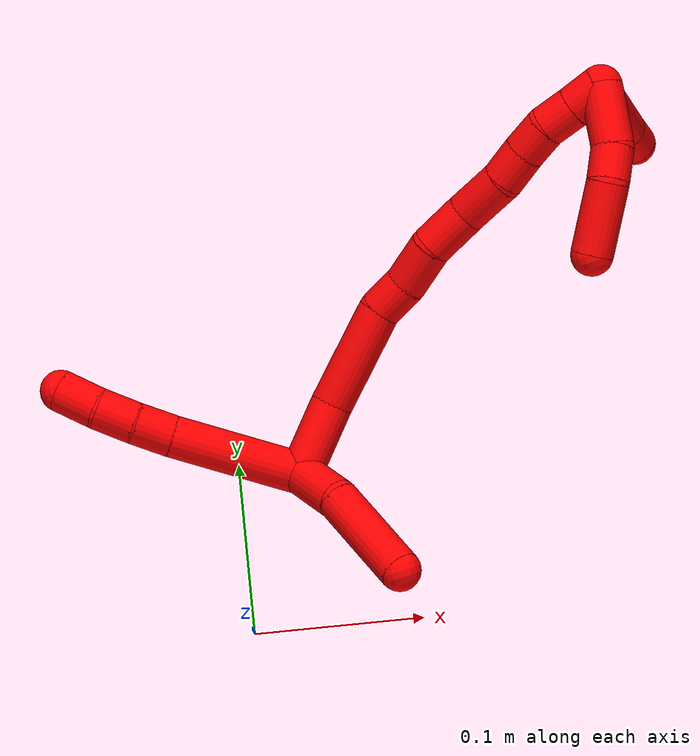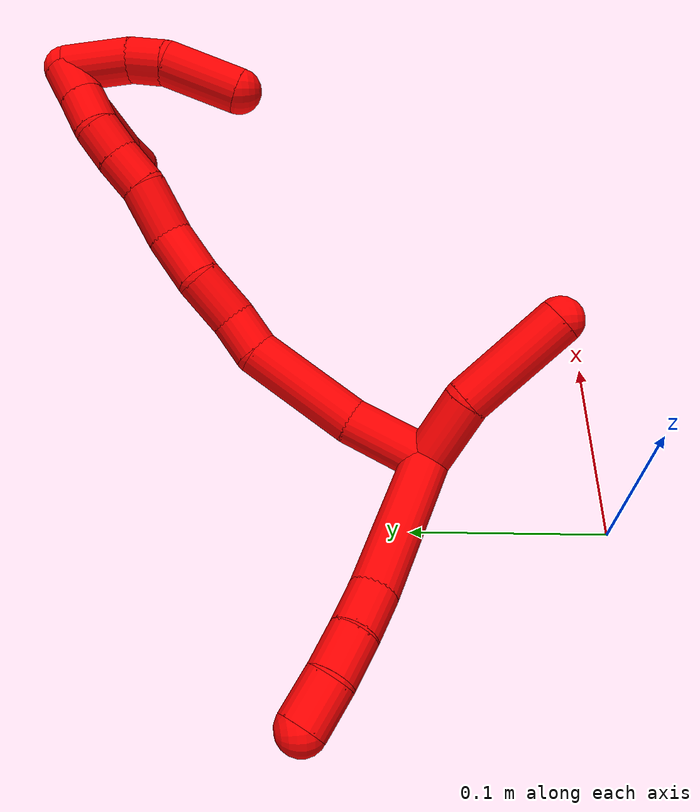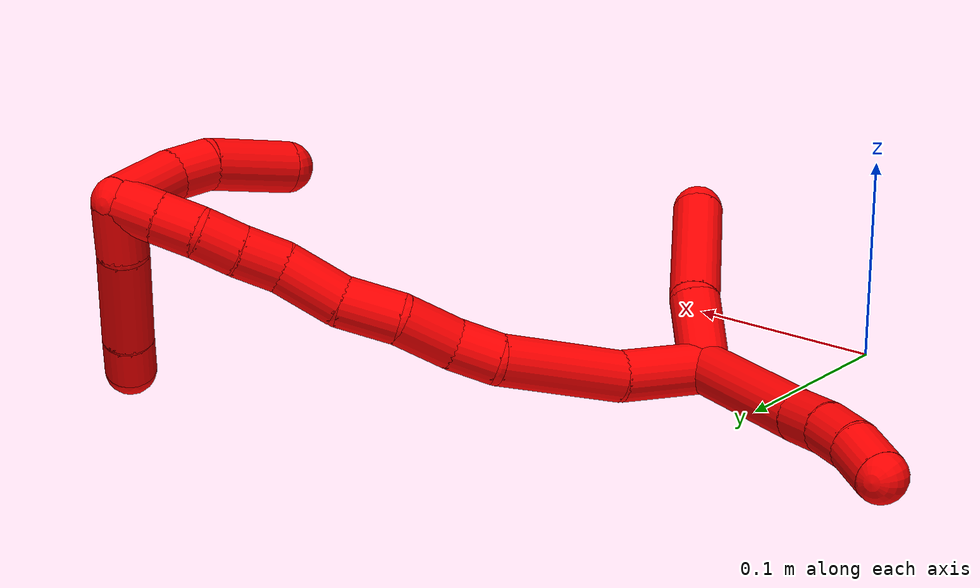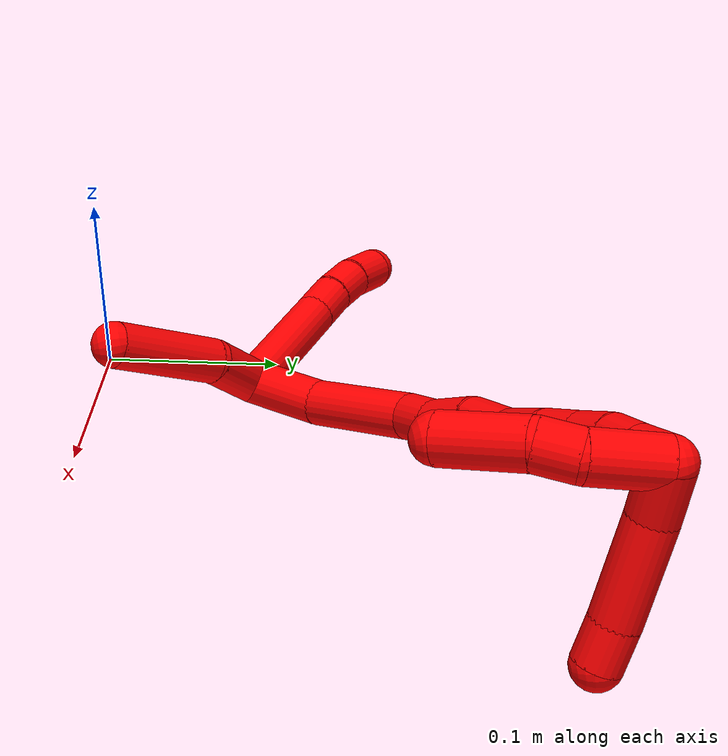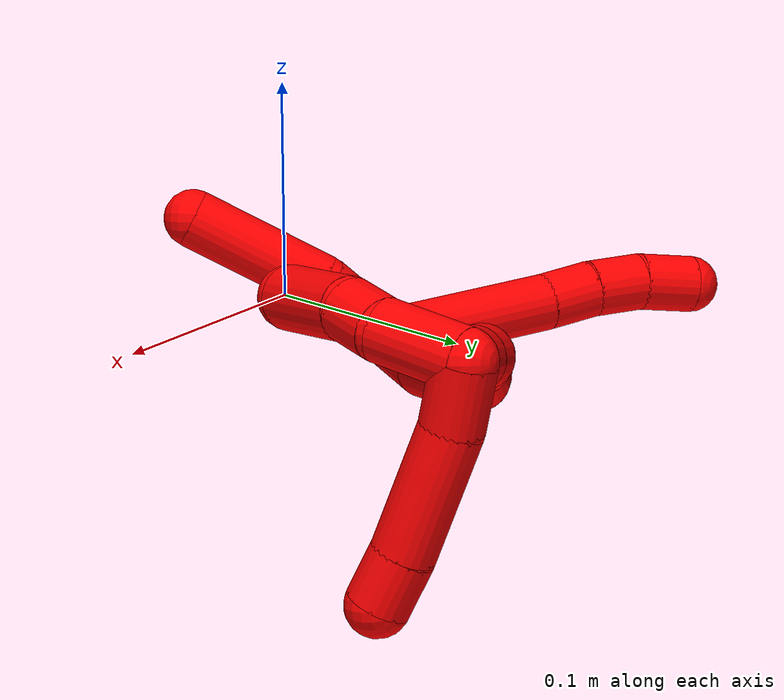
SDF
<sdf version="1.7">
 <world name="default">
  <model name="bin">
   <static>1</static>
   <link name="bottom">
    <collision name="collision-bottom">
     <pose>0 0 -0.01 0 -0 0</pose>
     <geometry><box><size>0.8 0.6 0.02</size></box></geometry>
     <surface>
      <friction><ode><mu>100</mu><mu2>100</mu2></ode></friction>
      <contact><collide_bitmask>65535</collide_bitmask></contact>
     </surface>
    </collision>
   </link>
   <link name="west_wall">
    <collision name="collision-west_wall">
     <pose>-0.41 0 0.1 0 -0 0</pose>
     <geometry><box><size>0.02 0.6 0.2</size></box></geometry>
     <surface>
      <friction><ode><mu>100</mu><mu2>100</mu2></ode></friction>
      <contact><collide_bitmask>65535</collide_bitmask></contact>
     </surface>
    </collision>
   </link>
   <link name="east_wall">
    <collision name="collision-east_wall">
     <pose>0.41 0 0.1 0 -0 0</pose>
     <geometry><box><size>0.02 0.6 0.2</size></box></geometry>
     <surface>
      <friction><ode><mu>100</mu><mu2>100</mu2></ode></friction>
      <contact><collide_bitmask>65535</collide_bitmask></contact>
     </surface>
    </collision>
   </link>
   <link name="south_wall">
    <collision name="collision-south_wall">
     <pose>0 -0.31 0.1 0 -0 0</pose>
     <geometry><box><size>0.8 0.02 0.2</size></box></geometry>
     <surface>
      <friction><ode><mu>100</mu><mu2>100</mu2></ode></friction>
      <contact><collide_bitmask>65535</collide_bitmask></contact>
     </surface>
    </collision>
   </link>
   <link name="north_wall">
    <collision name="collision-north_wall">
     <pose>0 0.31 0.1 0 -0 0</pose>
     <geometry><box><size>0.8 0.02 0.2</size></box></geometry>
     <surface>
      <friction><ode><mu>100</mu><mu2>100</mu2></ode></friction>
      <contact><collide_bitmask>65535</collide_bitmask></contact>
     </surface>
    </collision>
   </link>
  </model>
  <model name="2">
   <static>0</static>
   <link name="2">
    <collision name="collision-cylinder-e_1_2_8">
     <pose>-0.029809 -0.013512 0.021654 0.557871 -0.862682 -0.262119</pose>
     <geometry><cylinder><radius>0.0125</radius><length>0.078488</length></cylinder></geometry>
     <surface>
      <friction><ode><mu>1.16</mu><mu2>1.16</mu2><slip1>0</slip1><slip2>0</slip2></ode></friction>
      <contact><ode><kp>1e+06</kp><kd>1</kd><max_vel>0</max_vel><min_depth>0.001</min_depth></ode></contact>
     </surface>
    </collision>
    <visual name="visual-cylinder-e_1_2_8">
     <pose>-0.029809 -0.013512 0.021654 0.557871 -0.862682 -0.262119</pose>
     <geometry><cylinder><radius>0.0125</radius><length>0.078488</length></cylinder></geometry>
     <material><ambient>1 0 0 1</ambient></material>
    </visual>
    <collision name="collision-cylinder-e_2_8_9">
     <pose>-0.067682 -0.031587 0.050214 0.583911 -0.772379 -0.243201</pose>
     <geometry><cylinder><radius>0.0125</radius><length>0.023109</length></cylinder></geometry>
     <surface>
      <friction><ode><mu>1.16</mu><mu2>1.16</mu2><slip1>0</slip1><slip2>0</slip2></ode></friction>
      <contact><ode><kp>1e+06</kp><kd>1</kd><max_vel>0</max_vel><min_depth>0.001</min_depth></ode></contact>
     </surface>
    </collision>
    <visual name="visual-cylinder-e_2_8_9">
     <pose>-0.067682 -0.031587 0.050214 0.583911 -0.772379 -0.243201</pose>
     <geometry><cylinder><radius>0.0125</radius><length>0.023109</length></cylinder></geometry>
     <material><ambient>1 0 0 1</ambient></material>
    </visual>
    <collision name="collision-cylinder-e_3_9_10">
     <pose>-0.084282 -0.039532 0.06451 0.429164 -0.80988 -0.186288</pose>
     <geometry><cylinder><radius>0.0125</radius><length>0.023575</length></cylinder></geometry>
     <surface>
      <friction><ode><mu>1.16</mu><mu2>1.16</mu2><slip1>0</slip1><slip2>0</slip2></ode></friction>
      <contact><ode><kp>1e+06</kp><kd>1</kd><max_vel>0</max_vel><min_depth>0.001</min_depth></ode></contact>
     </surface>
    </collision>
    <visual name="visual-cylinder-e_3_9_10">
     <pose>-0.084282 -0.039532 0.06451 0.429164 -0.80988 -0.186288</pose>
     <geometry><cylinder><radius>0.0125</radius><length>0.023575</length></cylinder></geometry>
     <material><ambient>1 0 0 1</ambient></material>
    </visual>
    <collision name="collision-cylinder-e_4_10_6">
     <pose>-0.102079 -0.044254 0.080059 0.162822 -0.842051 -0.073041</pose>
     <geometry><cylinder><radius>0.0125</radius><length>0.024827</length></cylinder></geometry>
     <surface>
      <friction><ode><mu>1.16</mu><mu2>1.16</mu2><slip1>0</slip1><slip2>0</slip2></ode></friction>
      <contact><ode><kp>1e+06</kp><kd>1</kd><max_vel>0</max_vel><min_depth>0.001</min_depth></ode></contact>
     </surface>
    </collision>
    <visual name="visual-cylinder-e_4_10_6">
     <pose>-0.102079 -0.044254 0.080059 0.162822 -0.842051 -0.073041</pose>
     <geometry><cylinder><radius>0.0125</radius><length>0.024827</length></cylinder></geometry>
     <material><ambient>1 0 0 1</ambient></material>
    </visual>
    <collision name="collision-cylinder-e_1_2_11">
     <pose>0.013227 -0.009094 -0.010035 2.40531 0.773591 1.62522</pose>
     <geometry><cylinder><radius>0.0125</radius><length>0.03786</length></cylinder></geometry>
     <surface>
      <friction><ode><mu>1.16</mu><mu2>1.16</mu2><slip1>0</slip1><slip2>0</slip2></ode></friction>
      <contact><ode><kp>1e+06</kp><kd>1</kd><max_vel>0</max_vel><min_depth>0.001</min_depth></ode></contact>
     </surface>
    </collision>
    <visual name="visual-cylinder-e_1_2_11">
     <pose>0.013227 -0.009094 -0.010035 2.40531 0.773591 1.62522</pose>
     <geometry><cylinder><radius>0.0125</radius><length>0.03786</length></cylinder></geometry>
     <material><ambient>1 0 0 1</ambient></material>
    </visual>
    <collision name="collision-cylinder-e_2_11_5">
     <pose>0.043311 -0.028439 -0.044072 2.738 0.573492 1.9285</pose>
     <geometry><cylinder><radius>0.0125</radius><length>0.06214</length></cylinder></geometry>
     <surface>
      <friction><ode><mu>1.16</mu><mu2>1.16</mu2><slip1>0</slip1><slip2>0</slip2></ode></friction>
      <contact><ode><kp>1e+06</kp><kd>1</kd><max_vel>0</max_vel><min_depth>0.001</min_depth></ode></contact>
     </surface>
    </collision>
    <visual name="visual-cylinder-e_2_11_5">
     <pose>0.043311 -0.028439 -0.044072 2.738 0.573492 1.9285</pose>
     <geometry><cylinder><radius>0.0125</radius><length>0.06214</length></cylinder></geometry>
     <material><ambient>1 0 0 1</ambient></material>
    </visual>
    <collision name="collision-cylinder-e_1_2_12">
     <pose>0.012815 0.007408 0.016757 -0.41628 0.610356 -0.132867</pose>
     <geometry><cylinder><radius>0.0125</radius><length>0.044716</length></cylinder></geometry>
     <surface>
      <friction><ode><mu>1.16</mu><mu2>1.16</mu2><slip1>0</slip1><slip2>0</slip2></ode></friction>
      <contact><ode><kp>1e+06</kp><kd>1</kd><max_vel>0</max_vel><min_depth>0.001</min_depth></ode></contact>
     </surface>
    </collision>
    <visual name="visual-cylinder-e_1_2_12">
     <pose>0.012815 0.007408 0.016757 -0.41628 0.610356 -0.132867</pose>
     <geometry><cylinder><radius>0.0125</radius><length>0.044716</length></cylinder></geometry>
     <material><ambient>1 0 0 1</ambient></material>
    </visual>
    <collision name="collision-cylinder-e_2_12_13">
     <pose>0.047214 0.019499 0.055716 -0.207819 0.760413 -0.083307</pose>
     <geometry><cylinder><radius>0.0125</radius><length>0.062634</length></cylinder></geometry>
     <surface>
      <friction><ode><mu>1.16</mu><mu2>1.16</mu2><slip1>0</slip1><slip2>0</slip2></ode></friction>
      <contact><ode><kp>1e+06</kp><kd>1</kd><max_vel>0</max_vel><min_depth>0.001</min_depth></ode></contact>
     </surface>
    </collision>
    <visual name="visual-cylinder-e_2_12_13">
     <pose>0.047214 0.019499 0.055716 -0.207819 0.760413 -0.083307</pose>
     <geometry><cylinder><radius>0.0125</radius><length>0.062634</length></cylinder></geometry>
     <material><ambient>1 0 0 1</ambient></material>
    </visual>
    <collision name="collision-cylinder-e_3_13_14">
     <pose>0.078716 0.025422 0.08295 -0.24206 1.08929 -0.147085</pose>
     <geometry><cylinder><radius>0.0125</radius><length>0.022379</length></cylinder></geometry>
     <surface>
      <friction><ode><mu>1.16</mu><mu2>1.16</mu2><slip1>0</slip1><slip2>0</slip2></ode></friction>
      <contact><ode><kp>1e+06</kp><kd>1</kd><max_vel>0</max_vel><min_depth>0.001</min_depth></ode></contact>
     </surface>
    </collision>
    <visual name="visual-cylinder-e_3_13_14">
     <pose>0.078716 0.025422 0.08295 -0.24206 1.08929 -0.147085</pose>
     <geometry><cylinder><radius>0.0125</radius><length>0.022379</length></cylinder></geometry>
     <material><ambient>1 0 0 1</ambient></material>
    </visual>
    <collision name="collision-cylinder-e_4_14_15">
     <pose>0.100313 0.025642 0.096185 0.124006 0.954802 0.06421</pose>
     <geometry><cylinder><radius>0.0125</radius><length>0.028621</length></cylinder></geometry>
     <surface>
      <friction><ode><mu>1.16</mu><mu2>1.16</mu2><slip1>0</slip1><slip2>0</slip2></ode></friction>
      <contact><ode><kp>1e+06</kp><kd>1</kd><max_vel>0</max_vel><min_depth>0.001</min_depth></ode></contact>
     </surface>
    </collision>
    <visual name="visual-cylinder-e_4_14_15">
     <pose>0.100313 0.025642 0.096185 0.124006 0.954802 0.06421</pose>
     <geometry><cylinder><radius>0.0125</radius><length>0.028621</length></cylinder></geometry>
     <material><ambient>1 0 0 1</ambient></material>
    </visual>
    <collision name="collision-cylinder-e_5_15_16">
     <pose>0.124702 0.027025 0.110639 -0.367546 1.0859 -0.223391</pose>
     <geometry><cylinder><radius>0.0125</radius><length>0.02873</length></cylinder></geometry>
     <surface>
      <friction><ode><mu>1.16</mu><mu2>1.16</mu2><slip1>0</slip1><slip2>0</slip2></ode></friction>
      <contact><ode><kp>1e+06</kp><kd>1</kd><max_vel>0</max_vel><min_depth>0.001</min_depth></ode></contact>
     </surface>
    </collision>
    <visual name="visual-cylinder-e_5_15_16">
     <pose>0.124702 0.027025 0.110639 -0.367546 1.0859 -0.223391</pose>
     <geometry><cylinder><radius>0.0125</radius><length>0.02873</length></cylinder></geometry>
     <material><ambient>1 0 0 1</ambient></material>
    </visual>
    <collision name="collision-cylinder-e_6_16_17">
     <pose>0.151757 0.028362 0.122757 0.180179 1.17664 0.120382</pose>
     <geometry><cylinder><radius>0.0125</radius><length>0.031073</length></cylinder></geometry>
     <surface>
      <friction><ode><mu>1.16</mu><mu2>1.16</mu2><slip1>0</slip1><slip2>0</slip2></ode></friction>
      <contact><ode><kp>1e+06</kp><kd>1</kd><max_vel>0</max_vel><min_depth>0.001</min_depth></ode></contact>
     </surface>
    </collision>
    <visual name="visual-cylinder-e_6_16_17">
     <pose>0.151757 0.028362 0.122757 0.180179 1.17664 0.120382</pose>
     <geometry><cylinder><radius>0.0125</radius><length>0.031073</length></cylinder></geometry>
     <material><ambient>1 0 0 1</ambient></material>
    </visual>
    <collision name="collision-cylinder-e_7_17_18">
     <pose>0.175128 0.027621 0.134573 -0.055212 0.987593 -0.029725</pose>
     <geometry><cylinder><radius>0.0125</radius><length>0.021628</length></cylinder></geometry>
     <surface>
      <friction><ode><mu>1.16</mu><mu2>1.16</mu2><slip1>0</slip1><slip2>0</slip2></ode></friction>
      <contact><ode><kp>1e+06</kp><kd>1</kd><max_vel>0</max_vel><min_depth>0.001</min_depth></ode></contact>
     </surface>
    </collision>
    <visual name="visual-cylinder-e_7_17_18">
     <pose>0.175128 0.027621 0.134573 -0.055212 0.987593 -0.029725</pose>
     <geometry><cylinder><radius>0.0125</radius><length>0.021628</length></cylinder></geometry>
     <material><ambient>1 0 0 1</ambient></material>
    </visual>
    <collision name="collision-cylinder-e_8_18_19">
     <pose>0.192889 0.02784 0.145455 0.022182 1.05634 0.012943</pose>
     <geometry><cylinder><radius>0.0125</radius><length>0.020067</length></cylinder></geometry>
     <surface>
      <friction><ode><mu>1.16</mu><mu2>1.16</mu2><slip1>0</slip1><slip2>0</slip2></ode></friction>
      <contact><ode><kp>1e+06</kp><kd>1</kd><max_vel>0</max_vel><min_depth>0.001</min_depth></ode></contact>
     </surface>
    </collision>
    <visual name="visual-cylinder-e_8_18_19">
     <pose>0.192889 0.02784 0.145455 0.022182 1.05634 0.012943</pose>
     <geometry><cylinder><radius>0.0125</radius><length>0.020067</length></cylinder></geometry>
     <material><ambient>1 0 0 1</ambient></material>
    </visual>
    <collision name="collision-cylinder-e_9_19_20">
     <pose>0.211048 0.029283 0.153459 -0.468505 1.22096 -0.330859</pose>
     <geometry><cylinder><radius>0.0125</radius><length>0.020063</length></cylinder></geometry>
     <surface>
      <friction><ode><mu>1.16</mu><mu2>1.16</mu2><slip1>0</slip1><slip2>0</slip2></ode></friction>
      <contact><ode><kp>1e+06</kp><kd>1</kd><max_vel>0</max_vel><min_depth>0.001</min_depth></ode></contact>
     </surface>
    </collision>
    <visual name="visual-cylinder-e_9_19_20">
     <pose>0.211048 0.029283 0.153459 -0.468505 1.22096 -0.330859</pose>
     <geometry><cylinder><radius>0.0125</radius><length>0.020063</length></cylinder></geometry>
     <material><ambient>1 0 0 1</ambient></material>
    </visual>
    <collision name="collision-cylinder-e_10_20_1">
     <pose>0.229836 0.032206 0.159892 -0.386685 1.20066 -0.266494</pose>
     <geometry><cylinder><radius>0.0125</radius><length>0.020088</length></cylinder></geometry>
     <surface>
      <friction><ode><mu>1.16</mu><mu2>1.16</mu2><slip1>0</slip1><slip2>0</slip2></ode></friction>
      <contact><ode><kp>1e+06</kp><kd>1</kd><max_vel>0</max_vel><min_depth>0.001</min_depth></ode></contact>
     </surface>
    </collision>
    <visual name="visual-cylinder-e_10_20_1">
     <pose>0.229836 0.032206 0.159892 -0.386685 1.20066 -0.266494</pose>
     <geometry><cylinder><radius>0.0125</radius><length>0.020088</length></cylinder></geometry>
     <material><ambient>1 0 0 1</ambient></material>
    </visual>
    <collision name="collision-cylinder-e_1_1_21">
     <pose>0.238838 0.029037 0.145521 2.891 -0.019779 -0.156711</pose>
     <geometry><cylinder><radius>0.0125</radius><length>0.036622</length></cylinder></geometry>
     <surface>
      <friction><ode><mu>1.16</mu><mu2>1.16</mu2><slip1>0</slip1><slip2>0</slip2></ode></friction>
      <contact><ode><kp>1e+06</kp><kd>1</kd><max_vel>0</max_vel><min_depth>0.001</min_depth></ode></contact>
     </surface>
    </collision>
    <visual name="visual-cylinder-e_1_1_21">
     <pose>0.238838 0.029037 0.145521 2.891 -0.019779 -0.156711</pose>
     <geometry><cylinder><radius>0.0125</radius><length>0.036622</length></cylinder></geometry>
     <material><ambient>1 0 0 1</ambient></material>
    </visual>
    <collision name="collision-cylinder-e_2_21_22">
     <pose>0.235368 0.020772 0.11866 2.75409 -0.305449 -1.3304</pose>
     <geometry><cylinder><radius>0.0125</radius><length>0.02067</length></cylinder></geometry>
     <surface>
      <friction><ode><mu>1.16</mu><mu2>1.16</mu2><slip1>0</slip1><slip2>0</slip2></ode></friction>
      <contact><ode><kp>1e+06</kp><kd>1</kd><max_vel>0</max_vel><min_depth>0.001</min_depth></ode></contact>
     </surface>
    </collision>
    <visual name="visual-cylinder-e_2_21_22">
     <pose>0.235368 0.020772 0.11866 2.75409 -0.305449 -1.3304</pose>
     <geometry><cylinder><radius>0.0125</radius><length>0.02067</length></cylinder></geometry>
     <material><ambient>1 0 0 1</ambient></material>
    </visual>
    <collision name="collision-cylinder-e_3_22_4">
     <pose>0.222004 0.01426 0.091013 2.99223 -0.500986 -2.57261</pose>
     <geometry><cylinder><radius>0.0125</radius><length>0.042708</length></cylinder></geometry>
     <surface>
      <friction><ode><mu>1.16</mu><mu2>1.16</mu2><slip1>0</slip1><slip2>0</slip2></ode></friction>
      <contact><ode><kp>1e+06</kp><kd>1</kd><max_vel>0</max_vel><min_depth>0.001</min_depth></ode></contact>
     </surface>
    </collision>
    <visual name="visual-cylinder-e_3_22_4">
     <pose>0.222004 0.01426 0.091013 2.99223 -0.500986 -2.57261</pose>
     <geometry><cylinder><radius>0.0125</radius><length>0.042708</length></cylinder></geometry>
     <material><ambient>1 0 0 1</ambient></material>
    </visual>
    <collision name="collision-cylinder-e_1_1_23">
     <pose>0.234297 0.045566 0.159624 -1.86502 -0.373033 0.498165</pose>
     <geometry><cylinder><radius>0.0125</radius><length>0.026907</length></cylinder></geometry>
     <surface>
      <friction><ode><mu>1.16</mu><mu2>1.16</mu2><slip1>0</slip1><slip2>0</slip2></ode></friction>
      <contact><ode><kp>1e+06</kp><kd>1</kd><max_vel>0</max_vel><min_depth>0.001</min_depth></ode></contact>
     </surface>
    </collision>
    <visual name="visual-cylinder-e_1_1_23">
     <pose>0.234297 0.045566 0.159624 -1.86502 -0.373033 0.498165</pose>
     <geometry><cylinder><radius>0.0125</radius><length>0.026907</length></cylinder></geometry>
     <material><ambient>1 0 0 1</ambient></material>
    </visual>
    <collision name="collision-cylinder-e_2_23_24">
     <pose>0.223795 0.080577 0.146173 -1.97391 -0.220103 0.331433</pose>
     <geometry><cylinder><radius>0.0125</radius><length>0.051289</length></cylinder></geometry>
     <surface>
      <friction><ode><mu>1.16</mu><mu2>1.16</mu2><slip1>0</slip1><slip2>0</slip2></ode></friction>
      <contact><ode><kp>1e+06</kp><kd>1</kd><max_vel>0</max_vel><min_depth>0.001</min_depth></ode></contact>
     </surface>
    </collision>
    <visual name="visual-cylinder-e_2_23_24">
     <pose>0.223795 0.080577 0.146173 -1.97391 -0.220103 0.331433</pose>
     <geometry><cylinder><radius>0.0125</radius><length>0.051289</length></cylinder></geometry>
     <material><ambient>1 0 0 1</ambient></material>
    </visual>
    <collision name="collision-cylinder-e_3_24_3">
     <pose>0.21637 0.113137 0.131407 -2.04929 -0.168295 0.275775</pose>
     <geometry><cylinder><radius>0.0125</radius><length>0.021803</length></cylinder></geometry>
     <surface>
      <friction><ode><mu>1.16</mu><mu2>1.16</mu2><slip1>0</slip1><slip2>0</slip2></ode></friction>
      <contact><ode><kp>1e+06</kp><kd>1</kd><max_vel>0</max_vel><min_depth>0.001</min_depth></ode></contact>
     </surface>
    </collision>
    <visual name="visual-cylinder-e_3_24_3">
     <pose>0.21637 0.113137 0.131407 -2.04929 -0.168295 0.275775</pose>
     <geometry><cylinder><radius>0.0125</radius><length>0.021803</length></cylinder></geometry>
     <material><ambient>1 0 0 1</ambient></material>
    </visual>
    <collision name="collision-sphere-3">
     <pose>0.214544 0.122678 0.126459 0 -0 0</pose>
     <geometry><sphere><radius>0.0125</radius></sphere></geometry>
     <surface>
      <friction><ode><mu>1.16</mu><mu2>1.16</mu2><slip1>0</slip1><slip2>0</slip2></ode></friction>
      <contact><ode><kp>1e+06</kp><kd>1</kd><max_vel>0</max_vel><min_depth>0.001</min_depth></ode></contact>
     </surface>
    </collision>
    <visual name="visual-sphere-3">
     <pose>0.214544 0.122678 0.126459 0 -0 0</pose>
     <geometry><sphere><radius>0.0125</radius></sphere></geometry>
     <material><ambient>1 0 0 1</ambient></material>
    </visual>
    <collision name="collision-sphere-24">
     <pose>0.218196 0.103597 0.136356 0 -0 0</pose>
     <geometry><sphere><radius>0.0125</radius></sphere></geometry>
     <surface>
      <friction><ode><mu>1.16</mu><mu2>1.16</mu2><slip1>0</slip1><slip2>0</slip2></ode></friction>
      <contact><ode><kp>1e+06</kp><kd>1</kd><max_vel>0</max_vel><min_depth>0.001</min_depth></ode></contact>
     </surface>
    </collision>
    <visual name="visual-sphere-24">
     <pose>0.218196 0.103597 0.136356 0 -0 0</pose>
     <geometry><sphere><radius>0.0125</radius></sphere></geometry>
     <material><ambient>1 0 0 1</ambient></material>
    </visual>
    <collision name="collision-sphere-23">
     <pose>0.229394 0.057556 0.155991 0 -0 0</pose>
     <geometry><sphere><radius>0.0125</radius></sphere></geometry>
     <surface>
      <friction><ode><mu>1.16</mu><mu2>1.16</mu2><slip1>0</slip1><slip2>0</slip2></ode></friction>
      <contact><ode><kp>1e+06</kp><kd>1</kd><max_vel>0</max_vel><min_depth>0.001</min_depth></ode></contact>
     </surface>
    </collision>
    <visual name="visual-sphere-23">
     <pose>0.229394 0.057556 0.155991 0 -0 0</pose>
     <geometry><sphere><radius>0.0125</radius></sphere></geometry>
     <material><ambient>1 0 0 1</ambient></material>
    </visual>
    <collision name="collision-sphere-4">
     <pose>0.211747 0.011473 0.072492 0 -0 0</pose>
     <geometry><sphere><radius>0.0125</radius></sphere></geometry>
     <surface>
      <friction><ode><mu>1.16</mu><mu2>1.16</mu2><slip1>0</slip1><slip2>0</slip2></ode></friction>
      <contact><ode><kp>1e+06</kp><kd>1</kd><max_vel>0</max_vel><min_depth>0.001</min_depth></ode></contact>
     </surface>
    </collision>
    <visual name="visual-sphere-4">
     <pose>0.211747 0.011473 0.072492 0 -0 0</pose>
     <geometry><sphere><radius>0.0125</radius></sphere></geometry>
     <material><ambient>1 0 0 1</ambient></material>
    </visual>
    <collision name="collision-sphere-22">
     <pose>0.23226 0.017047 0.109534 0 -0 0</pose>
     <geometry><sphere><radius>0.0125</radius></sphere></geometry>
     <surface>
      <friction><ode><mu>1.16</mu><mu2>1.16</mu2><slip1>0</slip1><slip2>0</slip2></ode></friction>
      <contact><ode><kp>1e+06</kp><kd>1</kd><max_vel>0</max_vel><min_depth>0.001</min_depth></ode></contact>
     </surface>
    </collision>
    <visual name="visual-sphere-22">
     <pose>0.23226 0.017047 0.109534 0 -0 0</pose>
     <geometry><sphere><radius>0.0125</radius></sphere></geometry>
     <material><ambient>1 0 0 1</ambient></material>
    </visual>
    <collision name="collision-sphere-21">
     <pose>0.238476 0.024497 0.127786 0 -0 0</pose>
     <geometry><sphere><radius>0.0125</radius></sphere></geometry>
     <surface>
      <friction><ode><mu>1.16</mu><mu2>1.16</mu2><slip1>0</slip1><slip2>0</slip2></ode></friction>
      <contact><ode><kp>1e+06</kp><kd>1</kd><max_vel>0</max_vel><min_depth>0.001</min_depth></ode></contact>
     </surface>
    </collision>
    <visual name="visual-sphere-21">
     <pose>0.238476 0.024497 0.127786 0 -0 0</pose>
     <geometry><sphere><radius>0.0125</radius></sphere></geometry>
     <material><ambient>1 0 0 1</ambient></material>
    </visual>
    <collision name="collision-sphere-1">
     <pose>0.2392 0.033576 0.163257 0 -0 0</pose>
     <geometry><sphere><radius>0.0125</radius></sphere></geometry>
     <surface>
      <friction><ode><mu>1.16</mu><mu2>1.16</mu2><slip1>0</slip1><slip2>0</slip2></ode></friction>
      <contact><ode><kp>1e+06</kp><kd>1</kd><max_vel>0</max_vel><min_depth>0.001</min_depth></ode></contact>
     </surface>
    </collision>
    <visual name="visual-sphere-1">
     <pose>0.2392 0.033576 0.163257 0 -0 0</pose>
     <geometry><sphere><radius>0.0125</radius></sphere></geometry>
     <material><ambient>1 0 0 1</ambient></material>
    </visual>
    <collision name="collision-sphere-11">
     <pose>0.026453 -0.018189 -0.02007 0 -0 0</pose>
     <geometry><sphere><radius>0.0125</radius></sphere></geometry>
     <surface>
      <friction><ode><mu>1.16</mu><mu2>1.16</mu2><slip1>0</slip1><slip2>0</slip2></ode></friction>
      <contact><ode><kp>1e+06</kp><kd>1</kd><max_vel>0</max_vel><min_depth>0.001</min_depth></ode></contact>
     </surface>
    </collision>
    <visual name="visual-sphere-11">
     <pose>0.026453 -0.018189 -0.02007 0 -0 0</pose>
     <geometry><sphere><radius>0.0125</radius></sphere></geometry>
     <material><ambient>1 0 0 1</ambient></material>
    </visual>
    <collision name="collision-sphere-6">
     <pose>-0.11134 -0.045594 0.088216 0 -0 0</pose>
     <geometry><sphere><radius>0.0125</radius></sphere></geometry>
     <surface>
      <friction><ode><mu>1.16</mu><mu2>1.16</mu2><slip1>0</slip1><slip2>0</slip2></ode></friction>
      <contact><ode><kp>1e+06</kp><kd>1</kd><max_vel>0</max_vel><min_depth>0.001</min_depth></ode></contact>
     </surface>
    </collision>
    <visual name="visual-sphere-6">
     <pose>-0.11134 -0.045594 0.088216 0 -0 0</pose>
     <geometry><sphere><radius>0.0125</radius></sphere></geometry>
     <material><ambient>1 0 0 1</ambient></material>
    </visual>
    <collision name="collision-sphere-10">
     <pose>-0.092819 -0.042914 0.071902 0 -0 0</pose>
     <geometry><sphere><radius>0.0125</radius></sphere></geometry>
     <surface>
      <friction><ode><mu>1.16</mu><mu2>1.16</mu2><slip1>0</slip1><slip2>0</slip2></ode></friction>
      <contact><ode><kp>1e+06</kp><kd>1</kd><max_vel>0</max_vel><min_depth>0.001</min_depth></ode></contact>
     </surface>
    </collision>
    <visual name="visual-sphere-10">
     <pose>-0.092819 -0.042914 0.071902 0 -0 0</pose>
     <geometry><sphere><radius>0.0125</radius></sphere></geometry>
     <material><ambient>1 0 0 1</ambient></material>
    </visual>
    <collision name="collision-sphere-9">
     <pose>-0.075745 -0.036149 0.057119 0 -0 0</pose>
     <geometry><sphere><radius>0.0125</radius></sphere></geometry>
     <surface>
      <friction><ode><mu>1.16</mu><mu2>1.16</mu2><slip1>0</slip1><slip2>0</slip2></ode></friction>
      <contact><ode><kp>1e+06</kp><kd>1</kd><max_vel>0</max_vel><min_depth>0.001</min_depth></ode></contact>
     </surface>
    </collision>
    <visual name="visual-sphere-9">
     <pose>-0.075745 -0.036149 0.057119 0 -0 0</pose>
     <geometry><sphere><radius>0.0125</radius></sphere></geometry>
     <material><ambient>1 0 0 1</ambient></material>
    </visual>
    <collision name="collision-sphere-2">
     <geometry><sphere><radius>0.0125</radius></sphere></geometry>
     <surface>
      <friction><ode><mu>1.16</mu><mu2>1.16</mu2><slip1>0</slip1><slip2>0</slip2></ode></friction>
      <contact><ode><kp>1e+06</kp><kd>1</kd><max_vel>0</max_vel><min_depth>0.001</min_depth></ode></contact>
     </surface>
    </collision>
    <visual name="visual-sphere-2">
     <geometry><sphere><radius>0.0125</radius></sphere></geometry>
     <material><ambient>1 0 0 1</ambient></material>
    </visual>
    <collision name="collision-sphere-19">
     <pose>0.201624 0.027731 0.150391 0 -0 0</pose>
     <geometry><sphere><radius>0.0125</radius></sphere></geometry>
     <surface>
      <friction><ode><mu>1.16</mu><mu2>1.16</mu2><slip1>0</slip1><slip2>0</slip2></ode></friction>
      <contact><ode><kp>1e+06</kp><kd>1</kd><max_vel>0</max_vel><min_depth>0.001</min_depth></ode></contact>
     </surface>
    </collision>
    <visual name="visual-sphere-19">
     <pose>0.201624 0.027731 0.150391 0 -0 0</pose>
     <geometry><sphere><radius>0.0125</radius></sphere></geometry>
     <material><ambient>1 0 0 1</ambient></material>
    </visual>
    <collision name="collision-sphere-8">
     <pose>-0.059619 -0.027024 0.043309 0 -0 0</pose>
     <geometry><sphere><radius>0.0125</radius></sphere></geometry>
     <surface>
      <friction><ode><mu>1.16</mu><mu2>1.16</mu2><slip1>0</slip1><slip2>0</slip2></ode></friction>
      <contact><ode><kp>1e+06</kp><kd>1</kd><max_vel>0</max_vel><min_depth>0.001</min_depth></ode></contact>
     </surface>
    </collision>
    <visual name="visual-sphere-8">
     <pose>-0.059619 -0.027024 0.043309 0 -0 0</pose>
     <geometry><sphere><radius>0.0125</radius></sphere></geometry>
     <material><ambient>1 0 0 1</ambient></material>
    </visual>
    <collision name="collision-sphere-5">
     <pose>0.060168 -0.038688 -0.068074 0 -0 0</pose>
     <geometry><sphere><radius>0.0125</radius></sphere></geometry>
     <surface>
      <friction><ode><mu>1.16</mu><mu2>1.16</mu2><slip1>0</slip1><slip2>0</slip2></ode></friction>
      <contact><ode><kp>1e+06</kp><kd>1</kd><max_vel>0</max_vel><min_depth>0.001</min_depth></ode></contact>
     </surface>
    </collision>
    <visual name="visual-sphere-5">
     <pose>0.060168 -0.038688 -0.068074 0 -0 0</pose>
     <geometry><sphere><radius>0.0125</radius></sphere></geometry>
     <material><ambient>1 0 0 1</ambient></material>
    </visual>
    <collision name="collision-sphere-12">
     <pose>0.02563 0.014817 0.033513 0 -0 0</pose>
     <geometry><sphere><radius>0.0125</radius></sphere></geometry>
     <surface>
      <friction><ode><mu>1.16</mu><mu2>1.16</mu2><slip1>0</slip1><slip2>0</slip2></ode></friction>
      <contact><ode><kp>1e+06</kp><kd>1</kd><max_vel>0</max_vel><min_depth>0.001</min_depth></ode></contact>
     </surface>
    </collision>
    <visual name="visual-sphere-12">
     <pose>0.02563 0.014817 0.033513 0 -0 0</pose>
     <geometry><sphere><radius>0.0125</radius></sphere></geometry>
     <material><ambient>1 0 0 1</ambient></material>
    </visual>
    <collision name="collision-sphere-13">
     <pose>0.068798 0.02418 0.077919 0 -0 0</pose>
     <geometry><sphere><radius>0.0125</radius></sphere></geometry>
     <surface>
      <friction><ode><mu>1.16</mu><mu2>1.16</mu2><slip1>0</slip1><slip2>0</slip2></ode></friction>
      <contact><ode><kp>1e+06</kp><kd>1</kd><max_vel>0</max_vel><min_depth>0.001</min_depth></ode></contact>
     </surface>
    </collision>
    <visual name="visual-sphere-13">
     <pose>0.068798 0.02418 0.077919 0 -0 0</pose>
     <geometry><sphere><radius>0.0125</radius></sphere></geometry>
     <material><ambient>1 0 0 1</ambient></material>
    </visual>
    <collision name="collision-sphere-14">
     <pose>0.088633 0.026665 0.087981 0 -0 0</pose>
     <geometry><sphere><radius>0.0125</radius></sphere></geometry>
     <surface>
      <friction><ode><mu>1.16</mu><mu2>1.16</mu2><slip1>0</slip1><slip2>0</slip2></ode></friction>
      <contact><ode><kp>1e+06</kp><kd>1</kd><max_vel>0</max_vel><min_depth>0.001</min_depth></ode></contact>
     </surface>
    </collision>
    <visual name="visual-sphere-14">
     <pose>0.088633 0.026665 0.087981 0 -0 0</pose>
     <geometry><sphere><radius>0.0125</radius></sphere></geometry>
     <material><ambient>1 0 0 1</ambient></material>
    </visual>
    <collision name="collision-sphere-15">
     <pose>0.111994 0.024619 0.10439 0 -0 0</pose>
     <geometry><sphere><radius>0.0125</radius></sphere></geometry>
     <surface>
      <friction><ode><mu>1.16</mu><mu2>1.16</mu2><slip1>0</slip1><slip2>0</slip2></ode></friction>
      <contact><ode><kp>1e+06</kp><kd>1</kd><max_vel>0</max_vel><min_depth>0.001</min_depth></ode></contact>
     </surface>
    </collision>
    <visual name="visual-sphere-15">
     <pose>0.111994 0.024619 0.10439 0 -0 0</pose>
     <geometry><sphere><radius>0.0125</radius></sphere></geometry>
     <material><ambient>1 0 0 1</ambient></material>
    </visual>
    <collision name="collision-sphere-16">
     <pose>0.137411 0.029431 0.116887 0 -0 0</pose>
     <geometry><sphere><radius>0.0125</radius></sphere></geometry>
     <surface>
      <friction><ode><mu>1.16</mu><mu2>1.16</mu2><slip1>0</slip1><slip2>0</slip2></ode></friction>
      <contact><ode><kp>1e+06</kp><kd>1</kd><max_vel>0</max_vel><min_depth>0.001</min_depth></ode></contact>
     </surface>
    </collision>
    <visual name="visual-sphere-16">
     <pose>0.137411 0.029431 0.116887 0 -0 0</pose>
     <geometry><sphere><radius>0.0125</radius></sphere></geometry>
     <material><ambient>1 0 0 1</ambient></material>
    </visual>
    <collision name="collision-sphere-17">
     <pose>0.166102 0.027293 0.128627 0 -0 0</pose>
     <geometry><sphere><radius>0.0125</radius></sphere></geometry>
     <surface>
      <friction><ode><mu>1.16</mu><mu2>1.16</mu2><slip1>0</slip1><slip2>0</slip2></ode></friction>
      <contact><ode><kp>1e+06</kp><kd>1</kd><max_vel>0</max_vel><min_depth>0.001</min_depth></ode></contact>
     </surface>
    </collision>
    <visual name="visual-sphere-17">
     <pose>0.166102 0.027293 0.128627 0 -0 0</pose>
     <geometry><sphere><radius>0.0125</radius></sphere></geometry>
     <material><ambient>1 0 0 1</ambient></material>
    </visual>
    <collision name="collision-sphere-18">
     <pose>0.184155 0.02795 0.14052 0 -0 0</pose>
     <geometry><sphere><radius>0.0125</radius></sphere></geometry>
     <surface>
      <friction><ode><mu>1.16</mu><mu2>1.16</mu2><slip1>0</slip1><slip2>0</slip2></ode></friction>
      <contact><ode><kp>1e+06</kp><kd>1</kd><max_vel>0</max_vel><min_depth>0.001</min_depth></ode></contact>
     </surface>
    </collision>
    <visual name="visual-sphere-18">
     <pose>0.184155 0.02795 0.14052 0 -0 0</pose>
     <geometry><sphere><radius>0.0125</radius></sphere></geometry>
     <material><ambient>1 0 0 1</ambient></material>
    </visual>
    <collision name="collision-sphere-20">
     <pose>0.220472 0.030836 0.156527 0 -0 0</pose>
     <geometry><sphere><radius>0.0125</radius></sphere></geometry>
     <surface>
      <friction><ode><mu>1.16</mu><mu2>1.16</mu2><slip1>0</slip1><slip2>0</slip2></ode></friction>
      <contact><ode><kp>1e+06</kp><kd>1</kd><max_vel>0</max_vel><min_depth>0.001</min_depth></ode></contact>
     </surface>
    </collision>
    <visual name="visual-sphere-20">
     <pose>0.220472 0.030836 0.156527 0 -0 0</pose>
     <geometry><sphere><radius>0.0125</radius></sphere></geometry>
     <material><ambient>1 0 0 1</ambient></material>
    </visual>
    <inertial>
     <pose>0.097775 0.014531 0.076717 0 -0 0</pose>
     <mass>0.75</mass>
     <inertia><ixx>9.4e-05</ixx><ixy>0</ixy><ixz>0</ixz><iyy>0.000118</iyy><iyz>0</iyz><izz>4e-06</izz></inertia>
    </inertial>
   </link>
   <pose>0.035861 0.090776 0.011118 -1.45011 -0.453953 0.154171</pose>
  </model>
 </world>
</sdf>
